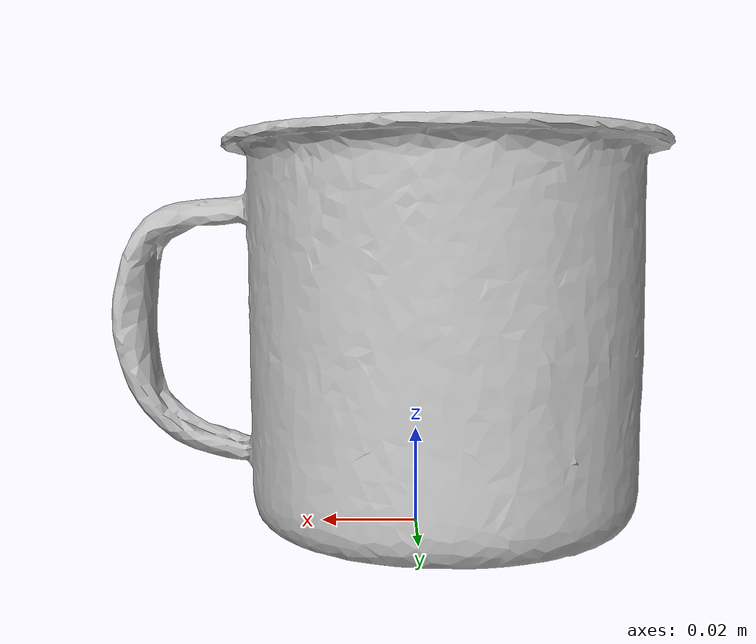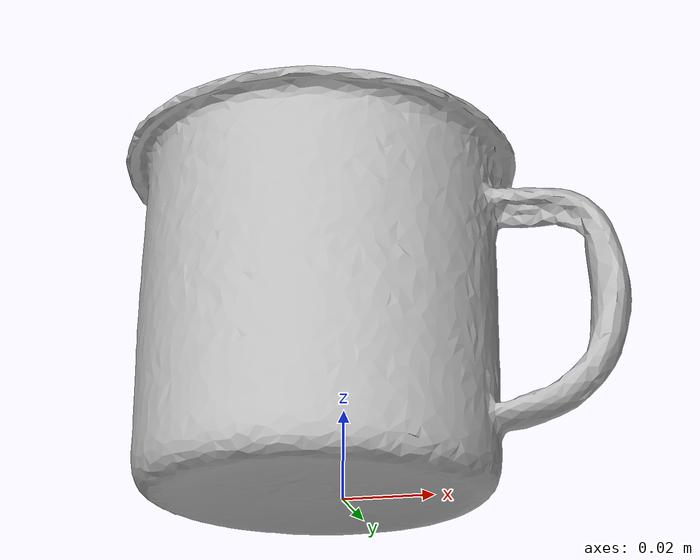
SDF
<?xml version="1.0" ?>
<sdf version='1.8'>
  <model name='ycb_025_mug'>
    <link name='body'>
      <inertial>
        <mass>0.118</mass>
        <pose>-0.00408260655 -0.000280037709 0.0274878523 0 0 0</pose>
        <inertia>
          <ixx>0.000101690301436</ixx>
          <ixy>6.42850178059e-07</ixy>
          <ixz>-2.90301007713e-06</ixz>
          <iyy>0.000115579347511</iyy>
          <iyz>-2.51001765473e-06</iyz>
          <izz>0.00014729214583</izz>
        </inertia>
      </inertial>
      <visual name='ycb_025_mug_visual'>
        <pose>0.014776 -0.016853 0.000589 0 0 0</pose>
        <geometry>
          <mesh>
            <uri>model://ycb_025_mug/meshes/textured.dae</uri>
          </mesh>
        </geometry>
      </visual>
      <collision name='ycb_025_mug_collision'>
        <pose>0.014776 -0.016853 0.000589 0 0 0</pose>
        <geometry>
          <mesh>
            <uri>model://ycb_025_mug/meshes/nontextured.stl</uri>
          </mesh>
        </geometry>
        <max_contacts>10</max_contacts>
        <surface>
          <contact>
            <ode>
              <kp>1e15</kp>
              <kd>1e13</kd>
            </ode>
          </contact>
        </surface>
      </collision>
    </link>
  </model>
</sdf>
